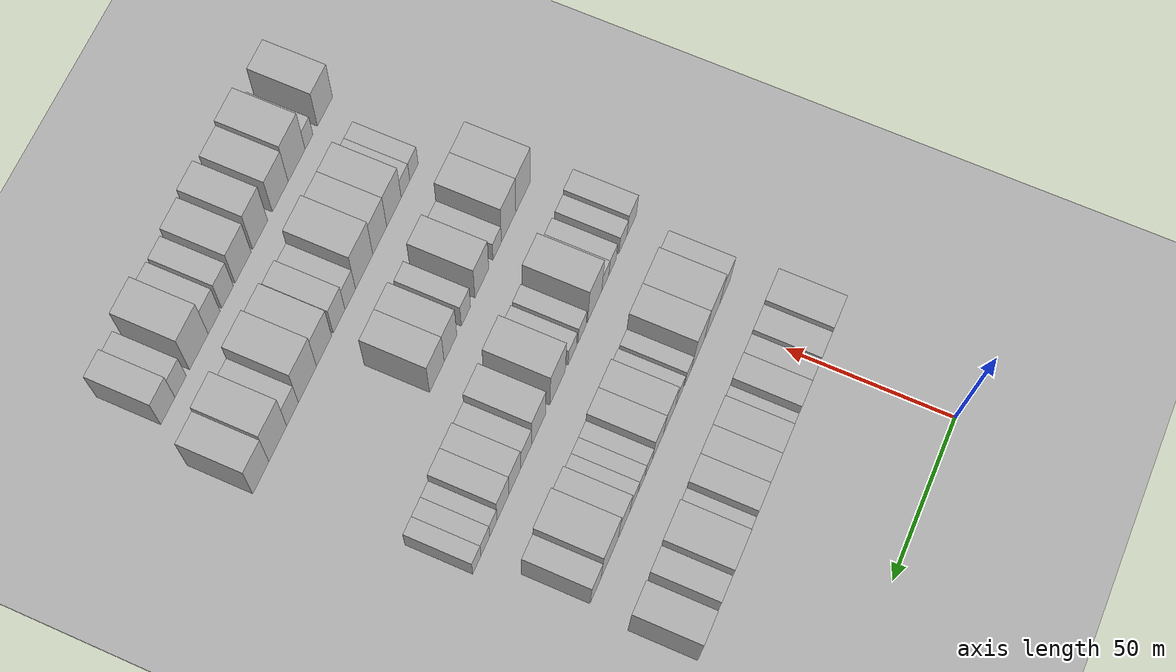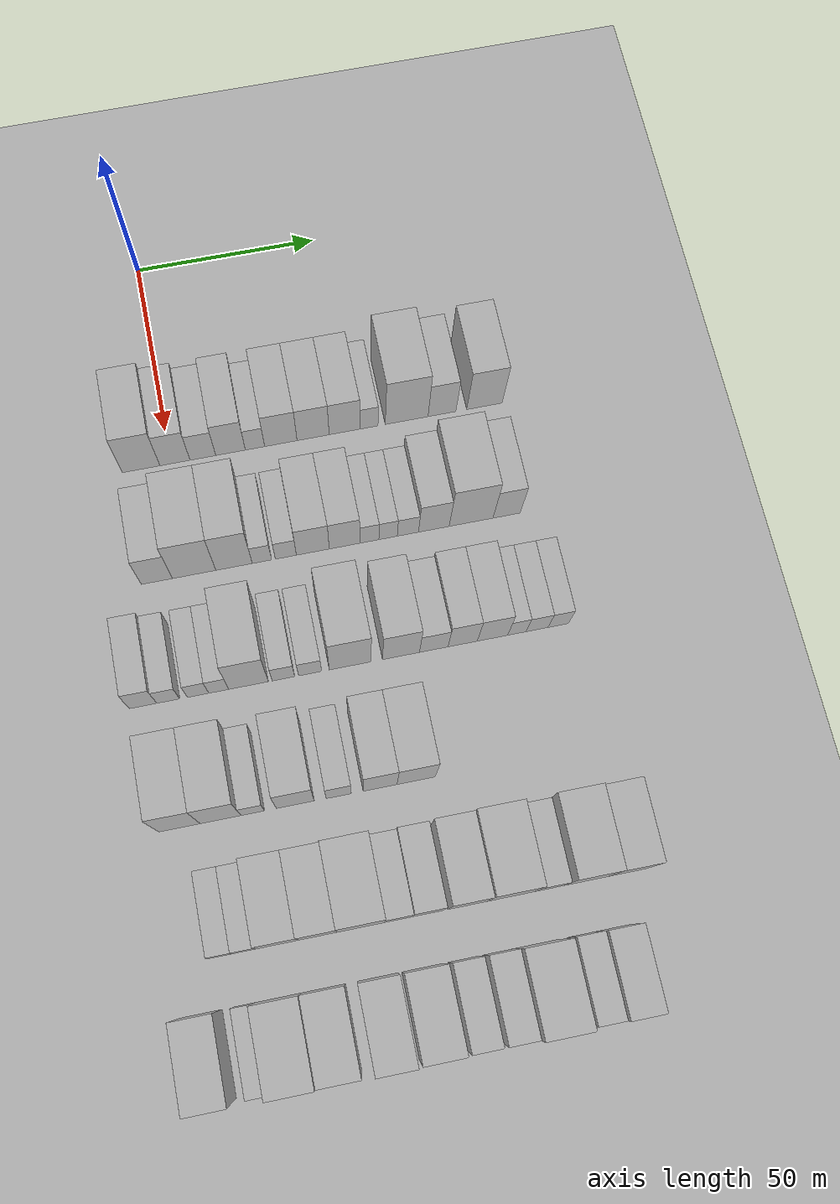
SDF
<sdf version="1.6">
 <world name="default">
  <include><name>ground_plane_1</name><uri>model://HANNAS_ground_plane</uri></include>
  <include>
   <name>ground_plane_2</name>
   <uri>model://HANNAS_ground_plane</uri>
   <pose>100 0 0  0 0 0</pose>
  </include>
  <model name="building_60">
   <static>1</static>
   <pose>50.0000 -7.9346 0 0.000000 0.000000 0.000000</pose>
   <link name="link">
    <pose>0 0 10.50 0 0 0</pose>
    <collision name="collision"><geometry><box><size>20.0000 10.1621 21.0000</size></box></geometry></collision>
    <visual name="visual">
     <cast_shadows>0</cast_shadows>
     <geometry><box><size>20.0000 10.1621 21.0000</size></box></geometry>
     <material>
      <script>
       <uri>model://HANNAS_wall/materials/scripts</uri>
       <uri>model://HANNAS_wall/materials/textures</uri>
       <name>vrc/HANNAS_wall</name>
      </script>
     </material>
    </visual>
   </link>
  </model>
  <model name="building_61">
   <static>1</static>
   <pose>50.0000 1.2176 0 0.000000 0.000000 0.000000</pose>
   <link name="link">
    <pose>0 0 9.00 0 0 0</pose>
    <collision name="collision"><geometry><box><size>20.0000 8.1424 18.0000</size></box></geometry></collision>
    <visual name="visual">
     <cast_shadows>0</cast_shadows>
     <geometry><box><size>20.0000 8.1424 18.0000</size></box></geometry>
     <material>
      <script>
       <uri>model://HANNAS_wall/materials/scripts</uri>
       <uri>model://HANNAS_wall/materials/textures</uri>
       <name>vrc/HANNAS_wall</name>
      </script>
     </material>
    </visual>
   </link>
  </model>
  <model name="building_62">
   <static>1</static>
   <pose>50.0000 8.7881 0 0.000000 0.000000 0.000000</pose>
   <link name="link">
    <pose>0 0 7.50 0 0 0</pose>
    <collision name="collision"><geometry><box><size>20.0000 6.9986 15.0000</size></box></geometry></collision>
    <visual name="visual">
     <cast_shadows>0</cast_shadows>
     <geometry><box><size>20.0000 6.9986 15.0000</size></box></geometry>
     <material>
      <script>
       <uri>model://HANNAS_wall/materials/scripts</uri>
       <uri>model://HANNAS_wall/materials/textures</uri>
       <name>vrc/HANNAS_wall</name>
      </script>
     </material>
    </visual>
   </link>
  </model>
  <model name="building_63">
   <static>1</static>
   <pose>50.0000 16.3188 0 0.000000 0.000000 0.000000</pose>
   <link name="link">
    <pose>0 0 9.00 0 0 0</pose>
    <collision name="collision"><geometry><box><size>20.0000 8.0629 18.0000</size></box></geometry></collision>
    <visual name="visual">
     <cast_shadows>0</cast_shadows>
     <geometry><box><size>20.0000 8.0629 18.0000</size></box></geometry>
     <material>
      <script>
       <uri>model://HANNAS_wall/materials/scripts</uri>
       <uri>model://HANNAS_wall/materials/textures</uri>
       <name>vrc/HANNAS_wall</name>
      </script>
     </material>
    </visual>
   </link>
  </model>
  <model name="building_64">
   <static>1</static>
   <pose>50.0000 22.9707 0 0.000000 0.000000 0.000000</pose>
   <link name="link">
    <pose>0 0 6.00 0 0 0</pose>
    <collision name="collision"><geometry><box><size>20.0000 5.2408 12.0000</size></box></geometry></collision>
    <visual name="visual">
     <cast_shadows>0</cast_shadows>
     <geometry><box><size>20.0000 5.2408 12.0000</size></box></geometry>
     <material>
      <script>
       <uri>model://HANNAS_wall/materials/scripts</uri>
       <uri>model://HANNAS_wall/materials/textures</uri>
       <name>vrc/HANNAS_wall</name>
      </script>
     </material>
    </visual>
   </link>
  </model>
  <model name="building_65">
   <static>1</static>
   <pose>50.0000 30.0249 0 0.000000 0.000000 0.000000</pose>
   <link name="link">
    <pose>0 0 9.00 0 0 0</pose>
    <collision name="collision"><geometry><box><size>20.0000 8.8676 18.0000</size></box></geometry></collision>
    <visual name="visual">
     <cast_shadows>0</cast_shadows>
     <geometry><box><size>20.0000 8.8676 18.0000</size></box></geometry>
     <material>
      <script>
       <uri>model://HANNAS_wall/materials/scripts</uri>
       <uri>model://HANNAS_wall/materials/textures</uri>
       <name>vrc/HANNAS_wall</name>
      </script>
     </material>
    </visual>
   </link>
  </model>
  <model name="building_66">
   <static>1</static>
   <pose>50.0000 38.8624 0 0.000000 0.000000 0.000000</pose>
   <link name="link">
    <pose>0 0 9.00 0 0 0</pose>
    <collision name="collision"><geometry><box><size>20.0000 8.8074 18.0000</size></box></geometry></collision>
    <visual name="visual">
     <cast_shadows>0</cast_shadows>
     <geometry><box><size>20.0000 8.8074 18.0000</size></box></geometry>
     <material>
      <script>
       <uri>model://HANNAS_wall/materials/scripts</uri>
       <uri>model://HANNAS_wall/materials/textures</uri>
       <name>vrc/HANNAS_wall</name>
      </script>
     </material>
    </visual>
   </link>
  </model>
  <model name="building_67">
   <static>1</static>
   <pose>50.0000 47.5125 0 0.000000 0.000000 0.000000</pose>
   <link name="link">
    <pose>0 0 9.00 0 0 0</pose>
    <collision name="collision"><geometry><box><size>20.0000 8.4929 18.0000</size></box></geometry></collision>
    <visual name="visual">
     <cast_shadows>0</cast_shadows>
     <geometry><box><size>20.0000 8.4929 18.0000</size></box></geometry>
     <material>
      <script>
       <uri>model://HANNAS_wall/materials/scripts</uri>
       <uri>model://HANNAS_wall/materials/textures</uri>
       <name>vrc/HANNAS_wall</name>
      </script>
     </material>
    </visual>
   </link>
  </model>
  <model name="building_68">
   <static>1</static>
   <pose>50.0000 54.2405 0 0.000000 0.000000 0.000000</pose>
   <link name="link">
    <pose>0 0 6.00 0 0 0</pose>
    <collision name="collision"><geometry><box><size>20.0000 4.9630 12.0000</size></box></geometry></collision>
    <visual name="visual">
     <cast_shadows>0</cast_shadows>
     <geometry><box><size>20.0000 4.9630 12.0000</size></box></geometry>
     <material>
      <script>
       <uri>model://HANNAS_wall/materials/scripts</uri>
       <uri>model://HANNAS_wall/materials/textures</uri>
       <name>vrc/HANNAS_wall</name>
      </script>
     </material>
    </visual>
   </link>
  </model>
  <model name="building_69">
   <static>1</static>
   <pose>50.0000 64.6380 0 0.000000 0.000000 0.000000</pose>
   <link name="link">
    <pose>0 0 12.00 0 0 0</pose>
    <collision name="collision"><geometry><box><size>20.0000 11.8322 24.0000</size></box></geometry></collision>
    <visual name="visual">
     <cast_shadows>0</cast_shadows>
     <geometry><box><size>20.0000 11.8322 24.0000</size></box></geometry>
     <material>
      <script>
       <uri>model://HANNAS_wall/materials/scripts</uri>
       <uri>model://HANNAS_wall/materials/textures</uri>
       <name>vrc/HANNAS_wall</name>
      </script>
     </material>
    </visual>
   </link>
  </model>
  <model name="building_70">
   <static>1</static>
   <pose>50.0000 74.4297 0 0.000000 0.000000 0.000000</pose>
   <link name="link">
    <pose>0 0 9.00 0 0 0</pose>
    <collision name="collision"><geometry><box><size>20.0000 7.7511 18.0000</size></box></geometry></collision>
    <visual name="visual">
     <cast_shadows>0</cast_shadows>
     <geometry><box><size>20.0000 7.7511 18.0000</size></box></geometry>
     <material>
      <script>
       <uri>model://HANNAS_wall/materials/scripts</uri>
       <uri>model://HANNAS_wall/materials/textures</uri>
       <name>vrc/HANNAS_wall</name>
      </script>
     </material>
    </visual>
   </link>
  </model>
  <model name="building_71">
   <static>1</static>
   <pose>50.0000 86.2482 0 0.000000 0.000000 0.000000</pose>
   <link name="link">
    <pose>0 0 10.50 0 0 0</pose>
    <collision name="collision"><geometry><box><size>20.0000 9.8860 21.0000</size></box></geometry></collision>
    <visual name="visual">
     <cast_shadows>0</cast_shadows>
     <geometry><box><size>20.0000 9.8860 21.0000</size></box></geometry>
     <material>
      <script>
       <uri>model://HANNAS_wall/materials/scripts</uri>
       <uri>model://HANNAS_wall/materials/textures</uri>
       <name>vrc/HANNAS_wall</name>
      </script>
     </material>
    </visual>
   </link>
  </model>
  <model name="building_179">
   <static>1</static>
   <pose>82.0000 -8.5100 0 0.000000 0.000000 0.000000</pose>
   <link name="link">
    <pose>0 0 9.00 0 0 0</pose>
    <collision name="collision"><geometry><box><size>20.0000 8.1752 18.0000</size></box></geometry></collision>
    <visual name="visual">
     <cast_shadows>0</cast_shadows>
     <geometry><box><size>20.0000 8.1752 18.0000</size></box></geometry>
     <material>
      <script>
       <uri>model://HANNAS_wall/materials/scripts</uri>
       <uri>model://HANNAS_wall/materials/textures</uri>
       <name>vrc/HANNAS_wall</name>
      </script>
     </material>
    </visual>
   </link>
  </model>
  <model name="building_180">
   <static>1</static>
   <pose>82.0000 1.3120 0 0.000000 0.000000 0.000000</pose>
   <link name="link">
    <pose>0 0 12.00 0 0 0</pose>
    <collision name="collision"><geometry><box><size>20.0000 11.4689 24.0000</size></box></geometry></collision>
    <visual name="visual">
     <cast_shadows>0</cast_shadows>
     <geometry><box><size>20.0000 11.4689 24.0000</size></box></geometry>
     <material>
      <script>
       <uri>model://HANNAS_wall/materials/scripts</uri>
       <uri>model://HANNAS_wall/materials/textures</uri>
       <name>vrc/HANNAS_wall</name>
      </script>
     </material>
    </visual>
   </link>
  </model>
  <model name="building_181">
   <static>1</static>
   <pose>82.0000 11.8715 0 0.000000 0.000000 0.000000</pose>
   <link name="link">
    <pose>0 0 12.00 0 0 0</pose>
    <collision name="collision"><geometry><box><size>20.0000 9.6501 24.0000</size></box></geometry></collision>
    <visual name="visual">
     <cast_shadows>0</cast_shadows>
     <geometry><box><size>20.0000 9.6501 24.0000</size></box></geometry>
     <material>
      <script>
       <uri>model://HANNAS_wall/materials/scripts</uri>
       <uri>model://HANNAS_wall/materials/textures</uri>
       <name>vrc/HANNAS_wall</name>
      </script>
     </material>
    </visual>
   </link>
  </model>
  <model name="building_182">
   <static>1</static>
   <pose>82.0000 19.2648 0 0.000000 0.000000 0.000000</pose>
   <link name="link">
    <pose>0 0 6.00 0 0 0</pose>
    <collision name="collision"><geometry><box><size>20.0000 5.1367 12.0000</size></box></geometry></collision>
    <visual name="visual">
     <cast_shadows>0</cast_shadows>
     <geometry><box><size>20.0000 5.1367 12.0000</size></box></geometry>
     <material>
      <script>
       <uri>model://HANNAS_wall/materials/scripts</uri>
       <uri>model://HANNAS_wall/materials/textures</uri>
       <name>vrc/HANNAS_wall</name>
      </script>
     </material>
    </visual>
   </link>
  </model>
  <model name="building_183">
   <static>1</static>
   <pose>82.0000 25.6323 0 0.000000 0.000000 0.000000</pose>
   <link name="link">
    <pose>0 0 6.00 0 0 0</pose>
    <collision name="collision"><geometry><box><size>20.0000 5.5982 12.0000</size></box></geometry></collision>
    <visual name="visual">
     <cast_shadows>0</cast_shadows>
     <geometry><box><size>20.0000 5.5982 12.0000</size></box></geometry>
     <material>
      <script>
       <uri>model://HANNAS_wall/materials/scripts</uri>
       <uri>model://HANNAS_wall/materials/textures</uri>
       <name>vrc/HANNAS_wall</name>
      </script>
     </material>
    </visual>
   </link>
  </model>
  <model name="building_184">
   <static>1</static>
   <pose>82.0000 32.8132 0 0.000000 0.000000 0.000000</pose>
   <link name="link">
    <pose>0 0 9.00 0 0 0</pose>
    <collision name="collision"><geometry><box><size>20.0000 8.7637 18.0000</size></box></geometry></collision>
    <visual name="visual">
     <cast_shadows>0</cast_shadows>
     <geometry><box><size>20.0000 8.7637 18.0000</size></box></geometry>
     <material>
      <script>
       <uri>model://HANNAS_wall/materials/scripts</uri>
       <uri>model://HANNAS_wall/materials/textures</uri>
       <name>vrc/HANNAS_wall</name>
      </script>
     </material>
    </visual>
   </link>
  </model>
  <model name="building_185">
   <static>1</static>
   <pose>82.0000 41.2877 0 0.000000 0.000000 0.000000</pose>
   <link name="link">
    <pose>0 0 9.00 0 0 0</pose>
    <collision name="collision"><geometry><box><size>20.0000 8.1854 18.0000</size></box></geometry></collision>
    <visual name="visual">
     <cast_shadows>0</cast_shadows>
     <geometry><box><size>20.0000 8.1854 18.0000</size></box></geometry>
     <material>
      <script>
       <uri>model://HANNAS_wall/materials/scripts</uri>
       <uri>model://HANNAS_wall/materials/textures</uri>
       <name>vrc/HANNAS_wall</name>
      </script>
     </material>
    </visual>
   </link>
  </model>
  <model name="building_186">
   <static>1</static>
   <pose>82.0000 47.9301 0 0.000000 0.000000 0.000000</pose>
   <link name="link">
    <pose>0 0 6.00 0 0 0</pose>
    <collision name="collision"><geometry><box><size>20.0000 5.0992 12.0000</size></box></geometry></collision>
    <visual name="visual">
     <cast_shadows>0</cast_shadows>
     <geometry><box><size>20.0000 5.0992 12.0000</size></box></geometry>
     <material>
      <script>
       <uri>model://HANNAS_wall/materials/scripts</uri>
       <uri>model://HANNAS_wall/materials/textures</uri>
       <name>vrc/HANNAS_wall</name>
      </script>
     </material>
    </visual>
   </link>
  </model>
  <model name="building_187">
   <static>1</static>
   <pose>82.0000 52.9545 0 0.000000 0.000000 0.000000</pose>
   <link name="link">
    <pose>0 0 6.00 0 0 0</pose>
    <collision name="collision"><geometry><box><size>20.0000 4.9496 12.0000</size></box></geometry></collision>
    <visual name="visual">
     <cast_shadows>0</cast_shadows>
     <geometry><box><size>20.0000 4.9496 12.0000</size></box></geometry>
     <material>
      <script>
       <uri>model://HANNAS_wall/materials/scripts</uri>
       <uri>model://HANNAS_wall/materials/textures</uri>
       <name>vrc/HANNAS_wall</name>
      </script>
     </material>
    </visual>
   </link>
  </model>
  <model name="building_188">
   <static>1</static>
   <pose>82.0000 58.2823 0 0.000000 0.000000 0.000000</pose>
   <link name="link">
    <pose>0 0 6.00 0 0 0</pose>
    <collision name="collision"><geometry><box><size>20.0000 5.7061 12.0000</size></box></geometry></collision>
    <visual name="visual">
     <cast_shadows>0</cast_shadows>
     <geometry><box><size>20.0000 5.7061 12.0000</size></box></geometry>
     <material>
      <script>
       <uri>model://HANNAS_wall/materials/scripts</uri>
       <uri>model://HANNAS_wall/materials/textures</uri>
       <name>vrc/HANNAS_wall</name>
      </script>
     </material>
    </visual>
   </link>
  </model>
  <model name="building_189">
   <static>1</static>
   <pose>82.0000 65.2683 0 0.000000 0.000000 0.000000</pose>
   <link name="link">
    <pose>0 0 9.00 0 0 0</pose>
    <collision name="collision"><geometry><box><size>20.0000 8.2660 18.0000</size></box></geometry></collision>
    <visual name="visual">
     <cast_shadows>0</cast_shadows>
     <geometry><box><size>20.0000 8.2660 18.0000</size></box></geometry>
     <material>
      <script>
       <uri>model://HANNAS_wall/materials/scripts</uri>
       <uri>model://HANNAS_wall/materials/textures</uri>
       <name>vrc/HANNAS_wall</name>
      </script>
     </material>
    </visual>
   </link>
  </model>
  <model name="building_190">
   <static>1</static>
   <pose>82.0000 75.3390 0 0.000000 0.000000 0.000000</pose>
   <link name="link">
    <pose>0 0 12.00 0 0 0</pose>
    <collision name="collision"><geometry><box><size>20.0000 11.8753 24.0000</size></box></geometry></collision>
    <visual name="visual">
     <cast_shadows>0</cast_shadows>
     <geometry><box><size>20.0000 11.8753 24.0000</size></box></geometry>
     <material>
      <script>
       <uri>model://HANNAS_wall/materials/scripts</uri>
       <uri>model://HANNAS_wall/materials/textures</uri>
       <name>vrc/HANNAS_wall</name>
      </script>
     </material>
    </visual>
   </link>
  </model>
  <model name="building_191">
   <static>1</static>
   <pose>82.0000 84.9614 0 0.000000 0.000000 0.000000</pose>
   <link name="link">
    <pose>0 0 9.00 0 0 0</pose>
    <collision name="collision"><geometry><box><size>20.0000 7.3695 18.0000</size></box></geometry></collision>
    <visual name="visual">
     <cast_shadows>0</cast_shadows>
     <geometry><box><size>20.0000 7.3695 18.0000</size></box></geometry>
     <material>
      <script>
       <uri>model://HANNAS_wall/materials/scripts</uri>
       <uri>model://HANNAS_wall/materials/textures</uri>
       <name>vrc/HANNAS_wall</name>
      </script>
     </material>
    </visual>
   </link>
  </model>
  <model name="building_302">
   <static>1</static>
   <pose>114.0000 -16.8240 0 0.000000 0.000000 0.000000</pose>
   <link name="link">
    <pose>0 0 7.50 0 0 0</pose>
    <collision name="collision"><geometry><box><size>20.0000 6.9656 15.0000</size></box></geometry></collision>
    <visual name="visual">
     <cast_shadows>0</cast_shadows>
     <geometry><box><size>20.0000 6.9656 15.0000</size></box></geometry>
     <material>
      <script>
       <uri>model://HANNAS_wall/materials/scripts</uri>
       <uri>model://HANNAS_wall/materials/textures</uri>
       <name>vrc/HANNAS_wall</name>
      </script>
     </material>
    </visual>
   </link>
  </model>
  <model name="building_303">
   <static>1</static>
   <pose>114.0000 -10.4124 0 0.000000 0.000000 0.000000</pose>
   <link name="link">
    <pose>0 0 6.00 0 0 0</pose>
    <collision name="collision"><geometry><box><size>20.0000 5.8577 12.0000</size></box></geometry></collision>
    <visual name="visual">
     <cast_shadows>0</cast_shadows>
     <geometry><box><size>20.0000 5.8577 12.0000</size></box></geometry>
     <material>
      <script>
       <uri>model://HANNAS_wall/materials/scripts</uri>
       <uri>model://HANNAS_wall/materials/textures</uri>
       <name>vrc/HANNAS_wall</name>
      </script>
     </material>
    </visual>
   </link>
  </model>
  <model name="building_304">
   <static>1</static>
   <pose>114.0000 -2.7635 0 0.000000 0.000000 0.000000</pose>
   <link name="link">
    <pose>0 0 6.00 0 0 0</pose>
    <collision name="collision"><geometry><box><size>20.0000 5.4400 12.0000</size></box></geometry></collision>
    <visual name="visual">
     <cast_shadows>0</cast_shadows>
     <geometry><box><size>20.0000 5.4400 12.0000</size></box></geometry>
     <material>
      <script>
       <uri>model://HANNAS_wall/materials/scripts</uri>
       <uri>model://HANNAS_wall/materials/textures</uri>
       <name>vrc/HANNAS_wall</name>
      </script>
     </material>
    </visual>
   </link>
  </model>
  <model name="building_305">
   <static>1</static>
   <pose>114.0000 2.5165 0 0.000000 0.000000 0.000000</pose>
   <link name="link">
    <pose>0 0 6.00 0 0 0</pose>
    <collision name="collision"><geometry><box><size>20.0000 5.1201 12.0000</size></box></geometry></collision>
    <visual name="visual">
     <cast_shadows>0</cast_shadows>
     <geometry><box><size>20.0000 5.1201 12.0000</size></box></geometry>
     <material>
      <script>
       <uri>model://HANNAS_wall/materials/scripts</uri>
       <uri>model://HANNAS_wall/materials/textures</uri>
       <name>vrc/HANNAS_wall</name>
      </script>
     </material>
    </visual>
   </link>
  </model>
  <model name="building_306">
   <static>1</static>
   <pose>114.0000 10.1935 0 0.000000 0.000000 0.000000</pose>
   <link name="link">
    <pose>0 0 12.00 0 0 0</pose>
    <collision name="collision"><geometry><box><size>20.0000 10.2338 24.0000</size></box></geometry></collision>
    <visual name="visual">
     <cast_shadows>0</cast_shadows>
     <geometry><box><size>20.0000 10.2338 24.0000</size></box></geometry>
     <material>
      <script>
       <uri>model://HANNAS_wall/materials/scripts</uri>
       <uri>model://HANNAS_wall/materials/textures</uri>
       <name>vrc/HANNAS_wall</name>
      </script>
     </material>
    </visual>
   </link>
  </model>
  <model name="building_307">
   <static>1</static>
   <pose>114.0000 19.2189 0 0.000000 0.000000 0.000000</pose>
   <link name="link">
    <pose>0 0 6.00 0 0 0</pose>
    <collision name="collision"><geometry><box><size>20.0000 5.8170 12.0000</size></box></geometry></collision>
    <visual name="visual">
     <cast_shadows>0</cast_shadows>
     <geometry><box><size>20.0000 5.8170 12.0000</size></box></geometry>
     <material>
      <script>
       <uri>model://HANNAS_wall/materials/scripts</uri>
       <uri>model://HANNAS_wall/materials/textures</uri>
       <name>vrc/HANNAS_wall</name>
      </script>
     </material>
    </visual>
   </link>
  </model>
  <model name="building_308">
   <static>1</static>
   <pose>114.0000 26.1151 0 0.000000 0.000000 0.000000</pose>
   <link name="link">
    <pose>0 0 6.00 0 0 0</pose>
    <collision name="collision"><geometry><box><size>20.0000 5.9753 12.0000</size></box></geometry></collision>
    <visual name="visual">
     <cast_shadows>0</cast_shadows>
     <geometry><box><size>20.0000 5.9753 12.0000</size></box></geometry>
     <material>
      <script>
       <uri>model://HANNAS_wall/materials/scripts</uri>
       <uri>model://HANNAS_wall/materials/textures</uri>
       <name>vrc/HANNAS_wall</name>
      </script>
     </material>
    </visual>
   </link>
  </model>
  <model name="building_309">
   <static>1</static>
   <pose>114.0000 36.5189 0 0.000000 0.000000 0.000000</pose>
   <link name="link">
    <pose>0 0 12.00 0 0 0</pose>
    <collision name="collision"><geometry><box><size>20.0000 10.8323 24.0000</size></box></geometry></collision>
    <visual name="visual">
     <cast_shadows>0</cast_shadows>
     <geometry><box><size>20.0000 10.8323 24.0000</size></box></geometry>
     <material>
      <script>
       <uri>model://HANNAS_wall/materials/scripts</uri>
       <uri>model://HANNAS_wall/materials/textures</uri>
       <name>vrc/HANNAS_wall</name>
      </script>
     </material>
    </visual>
   </link>
  </model>
  <model name="building_310">
   <static>1</static>
   <pose>114.0000 49.7742 0 0.000000 0.000000 0.000000</pose>
   <link name="link">
    <pose>0 0 10.50 0 0 0</pose>
    <collision name="collision"><geometry><box><size>20.0000 9.6784 21.0000</size></box></geometry></collision>
    <visual name="visual">
     <cast_shadows>0</cast_shadows>
     <geometry><box><size>20.0000 9.6784 21.0000</size></box></geometry>
     <material>
      <script>
       <uri>model://HANNAS_wall/materials/scripts</uri>
       <uri>model://HANNAS_wall/materials/textures</uri>
       <name>vrc/HANNAS_wall</name>
      </script>
     </material>
    </visual>
   </link>
  </model>
  <model name="building_311">
   <static>1</static>
   <pose>114.0000 58.3414 0 0.000000 0.000000 0.000000</pose>
   <link name="link">
    <pose>0 0 7.50 0 0 0</pose>
    <collision name="collision"><geometry><box><size>20.0000 7.4559 15.0000</size></box></geometry></collision>
    <visual name="visual">
     <cast_shadows>0</cast_shadows>
     <geometry><box><size>20.0000 7.4559 15.0000</size></box></geometry>
     <material>
      <script>
       <uri>model://HANNAS_wall/materials/scripts</uri>
       <uri>model://HANNAS_wall/materials/textures</uri>
       <name>vrc/HANNAS_wall</name>
      </script>
     </material>
    </visual>
   </link>
  </model>
  <model name="building_312">
   <static>1</static>
   <pose>114.0000 65.9230 0 0.000000 0.000000 0.000000</pose>
   <link name="link">
    <pose>0 0 9.00 0 0 0</pose>
    <collision name="collision"><geometry><box><size>20.0000 7.7073 18.0000</size></box></geometry></collision>
    <visual name="visual">
     <cast_shadows>0</cast_shadows>
     <geometry><box><size>20.0000 7.7073 18.0000</size></box></geometry>
     <material>
      <script>
       <uri>model://HANNAS_wall/materials/scripts</uri>
       <uri>model://HANNAS_wall/materials/textures</uri>
       <name>vrc/HANNAS_wall</name>
      </script>
     </material>
    </visual>
   </link>
  </model>
  <model name="building_313">
   <static>1</static>
   <pose>114.0000 73.7893 0 0.000000 0.000000 0.000000</pose>
   <link name="link">
    <pose>0 0 9.00 0 0 0</pose>
    <collision name="collision"><geometry><box><size>20.0000 8.0253 18.0000</size></box></geometry></collision>
    <visual name="visual">
     <cast_shadows>0</cast_shadows>
     <geometry><box><size>20.0000 8.0253 18.0000</size></box></geometry>
     <material>
      <script>
       <uri>model://HANNAS_wall/materials/scripts</uri>
       <uri>model://HANNAS_wall/materials/textures</uri>
       <name>vrc/HANNAS_wall</name>
      </script>
     </material>
    </visual>
   </link>
  </model>
  <model name="building_314">
   <static>1</static>
   <pose>114.0000 80.2514 0 0.000000 0.000000 0.000000</pose>
   <link name="link">
    <pose>0 0 6.00 0 0 0</pose>
    <collision name="collision"><geometry><box><size>20.0000 4.8990 12.0000</size></box></geometry></collision>
    <visual name="visual">
     <cast_shadows>0</cast_shadows>
     <geometry><box><size>20.0000 4.8990 12.0000</size></box></geometry>
     <material>
      <script>
       <uri>model://HANNAS_wall/materials/scripts</uri>
       <uri>model://HANNAS_wall/materials/textures</uri>
       <name>vrc/HANNAS_wall</name>
      </script>
     </material>
    </visual>
   </link>
  </model>
  <model name="building_315">
   <static>1</static>
   <pose>114.0000 85.5887 0 0.000000 0.000000 0.000000</pose>
   <link name="link">
    <pose>0 0 6.00 0 0 0</pose>
    <collision name="collision"><geometry><box><size>20.0000 5.7754 12.0000</size></box></geometry></collision>
    <visual name="visual">
     <cast_shadows>0</cast_shadows>
     <geometry><box><size>20.0000 5.7754 12.0000</size></box></geometry>
     <material>
      <script>
       <uri>model://HANNAS_wall/materials/scripts</uri>
       <uri>model://HANNAS_wall/materials/textures</uri>
       <name>vrc/HANNAS_wall</name>
      </script>
     </material>
    </visual>
   </link>
  </model>
  <model name="building_316">
   <static>1</static>
   <pose>114.0000 91.1771 0 0.000000 0.000000 0.000000</pose>
   <link name="link">
    <pose>0 0 6.00 0 0 0</pose>
    <collision name="collision"><geometry><box><size>20.0000 5.4014 12.0000</size></box></geometry></collision>
    <visual name="visual">
     <cast_shadows>0</cast_shadows>
     <geometry><box><size>20.0000 5.4014 12.0000</size></box></geometry>
     <material>
      <script>
       <uri>model://HANNAS_wall/materials/scripts</uri>
       <uri>model://HANNAS_wall/materials/textures</uri>
       <name>vrc/HANNAS_wall</name>
      </script>
     </material>
    </visual>
   </link>
  </model>
  <model name="building_413">
   <static>1</static>
   <pose>146.0000 -12.4923 0 0.000000 0.000000 0.000000</pose>
   <link name="link">
    <pose>0 0 12.00 0 0 0</pose>
    <collision name="collision"><geometry><box><size>20.0000 10.2843 24.0000</size></box></geometry></collision>
    <visual name="visual">
     <cast_shadows>0</cast_shadows>
     <geometry><box><size>20.0000 10.2843 24.0000</size></box></geometry>
     <material>
      <script>
       <uri>model://HANNAS_wall/materials/scripts</uri>
       <uri>model://HANNAS_wall/materials/textures</uri>
       <name>vrc/HANNAS_wall</name>
      </script>
     </material>
    </visual>
   </link>
  </model>
  <model name="building_414">
   <static>1</static>
   <pose>146.0000 -2.2470 0 0.000000 0.000000 0.000000</pose>
   <link name="link">
    <pose>0 0 12.00 0 0 0</pose>
    <collision name="collision"><geometry><box><size>20.0000 10.2064 24.0000</size></box></geometry></collision>
    <visual name="visual">
     <cast_shadows>0</cast_shadows>
     <geometry><box><size>20.0000 10.2064 24.0000</size></box></geometry>
     <material>
      <script>
       <uri>model://HANNAS_wall/materials/scripts</uri>
       <uri>model://HANNAS_wall/materials/textures</uri>
       <name>vrc/HANNAS_wall</name>
      </script>
     </material>
    </visual>
   </link>
  </model>
  <model name="building_415">
   <static>1</static>
   <pose>146.0000 5.7773 0 0.000000 0.000000 0.000000</pose>
   <link name="link">
    <pose>0 0 6.00 0 0 0</pose>
    <collision name="collision"><geometry><box><size>20.0000 5.8421 12.0000</size></box></geometry></collision>
    <visual name="visual">
     <cast_shadows>0</cast_shadows>
     <geometry><box><size>20.0000 5.8421 12.0000</size></box></geometry>
     <material>
      <script>
       <uri>model://HANNAS_wall/materials/scripts</uri>
       <uri>model://HANNAS_wall/materials/textures</uri>
       <name>vrc/HANNAS_wall</name>
      </script>
     </material>
    </visual>
   </link>
  </model>
  <model name="building_416">
   <static>1</static>
   <pose>146.0000 16.4605 0 0.000000 0.000000 0.000000</pose>
   <link name="link">
    <pose>0 0 10.50 0 0 0</pose>
    <collision name="collision"><geometry><box><size>20.0000 9.5244 21.0000</size></box></geometry></collision>
    <visual name="visual">
     <cast_shadows>0</cast_shadows>
     <geometry><box><size>20.0000 9.5244 21.0000</size></box></geometry>
     <material>
      <script>
       <uri>model://HANNAS_wall/materials/scripts</uri>
       <uri>model://HANNAS_wall/materials/textures</uri>
       <name>vrc/HANNAS_wall</name>
      </script>
     </material>
    </visual>
   </link>
  </model>
  <model name="building_417">
   <static>1</static>
   <pose>146.0000 27.3804 0 0.000000 0.000000 0.000000</pose>
   <link name="link">
    <pose>0 0 7.50 0 0 0</pose>
    <collision name="collision"><geometry><box><size>20.0000 6.3154 15.0000</size></box></geometry></collision>
    <visual name="visual">
     <cast_shadows>0</cast_shadows>
     <geometry><box><size>20.0000 6.3154 15.0000</size></box></geometry>
     <material>
      <script>
       <uri>model://HANNAS_wall/materials/scripts</uri>
       <uri>model://HANNAS_wall/materials/textures</uri>
       <name>vrc/HANNAS_wall</name>
      </script>
     </material>
    </visual>
   </link>
  </model>
  <model name="building_418">
   <static>1</static>
   <pose>146.0000 37.8271 0 0.000000 0.000000 0.000000</pose>
   <link name="link">
    <pose>0 0 10.50 0 0 0</pose>
    <collision name="collision"><geometry><box><size>20.0000 8.5779 21.0000</size></box></geometry></collision>
    <visual name="visual">
     <cast_shadows>0</cast_shadows>
     <geometry><box><size>20.0000 8.5779 21.0000</size></box></geometry>
     <material>
      <script>
       <uri>model://HANNAS_wall/materials/scripts</uri>
       <uri>model://HANNAS_wall/materials/textures</uri>
       <name>vrc/HANNAS_wall</name>
      </script>
     </material>
    </visual>
   </link>
  </model>
  <model name="building_419">
   <static>1</static>
   <pose>146.0000 46.9918 0 0.000000 0.000000 0.000000</pose>
   <link name="link">
    <pose>0 0 10.50 0 0 0</pose>
    <collision name="collision"><geometry><box><size>20.0000 9.7515 21.0000</size></box></geometry></collision>
    <visual name="visual">
     <cast_shadows>0</cast_shadows>
     <geometry><box><size>20.0000 9.7515 21.0000</size></box></geometry>
     <material>
      <script>
       <uri>model://HANNAS_wall/materials/scripts</uri>
       <uri>model://HANNAS_wall/materials/textures</uri>
       <name>vrc/HANNAS_wall</name>
      </script>
     </material>
    </visual>
   </link>
  </model>
  <model name="building_530">
   <static>1</static>
   <pose>178.0000 -7.0886 0 0.000000 0.000000 0.000000</pose>
   <link name="link">
    <pose>0 0 6.00 0 0 0</pose>
    <collision name="collision"><geometry><box><size>20.0000 5.7295 12.0000</size></box></geometry></collision>
    <visual name="visual">
     <cast_shadows>0</cast_shadows>
     <geometry><box><size>20.0000 5.7295 12.0000</size></box></geometry>
     <material>
      <script>
       <uri>model://HANNAS_wall/materials/scripts</uri>
       <uri>model://HANNAS_wall/materials/textures</uri>
       <name>vrc/HANNAS_wall</name>
      </script>
     </material>
    </visual>
   </link>
  </model>
  <model name="building_531">
   <static>1</static>
   <pose>178.0000 -1.2630 0 0.000000 0.000000 0.000000</pose>
   <link name="link">
    <pose>0 0 6.00 0 0 0</pose>
    <collision name="collision"><geometry><box><size>20.0000 5.9216 12.0000</size></box></geometry></collision>
    <visual name="visual">
     <cast_shadows>0</cast_shadows>
     <geometry><box><size>20.0000 5.9216 12.0000</size></box></geometry>
     <material>
      <script>
       <uri>model://HANNAS_wall/materials/scripts</uri>
       <uri>model://HANNAS_wall/materials/textures</uri>
       <name>vrc/HANNAS_wall</name>
      </script>
     </material>
    </visual>
   </link>
  </model>
  <model name="building_532">
   <static>1</static>
   <pose>178.0000 6.6091 0 0.000000 0.000000 0.000000</pose>
   <link name="link">
    <pose>0 0 10.50 0 0 0</pose>
    <collision name="collision"><geometry><box><size>20.0000 9.8227 21.0000</size></box></geometry></collision>
    <visual name="visual">
     <cast_shadows>0</cast_shadows>
     <geometry><box><size>20.0000 9.8227 21.0000</size></box></geometry>
     <material>
      <script>
       <uri>model://HANNAS_wall/materials/scripts</uri>
       <uri>model://HANNAS_wall/materials/textures</uri>
       <name>vrc/HANNAS_wall</name>
      </script>
     </material>
    </visual>
   </link>
  </model>
  <model name="building_533">
   <static>1</static>
   <pose>178.0000 16.1865 0 0.000000 0.000000 0.000000</pose>
   <link name="link">
    <pose>0 0 10.50 0 0 0</pose>
    <collision name="collision"><geometry><box><size>20.0000 9.3321 21.0000</size></box></geometry></collision>
    <visual name="visual">
     <cast_shadows>0</cast_shadows>
     <geometry><box><size>20.0000 9.3321 21.0000</size></box></geometry>
     <material>
      <script>
       <uri>model://HANNAS_wall/materials/scripts</uri>
       <uri>model://HANNAS_wall/materials/textures</uri>
       <name>vrc/HANNAS_wall</name>
      </script>
     </material>
    </visual>
   </link>
  </model>
  <model name="building_534">
   <static>1</static>
   <pose>178.0000 26.6143 0 0.000000 0.000000 0.000000</pose>
   <link name="link">
    <pose>0 0 12.00 0 0 0</pose>
    <collision name="collision"><geometry><box><size>20.0000 11.5236 24.0000</size></box></geometry></collision>
    <visual name="visual">
     <cast_shadows>0</cast_shadows>
     <geometry><box><size>20.0000 11.5236 24.0000</size></box></geometry>
     <material>
      <script>
       <uri>model://HANNAS_wall/materials/scripts</uri>
       <uri>model://HANNAS_wall/materials/textures</uri>
       <name>vrc/HANNAS_wall</name>
      </script>
     </material>
    </visual>
   </link>
  </model>
  <model name="building_535">
   <static>1</static>
   <pose>178.0000 35.7931 0 0.000000 0.000000 0.000000</pose>
   <link name="link">
    <pose>0 0 7.50 0 0 0</pose>
    <collision name="collision"><geometry><box><size>20.0000 6.8340 15.0000</size></box></geometry></collision>
    <visual name="visual">
     <cast_shadows>0</cast_shadows>
     <geometry><box><size>20.0000 6.8340 15.0000</size></box></geometry>
     <material>
      <script>
       <uri>model://HANNAS_wall/materials/scripts</uri>
       <uri>model://HANNAS_wall/materials/textures</uri>
       <name>vrc/HANNAS_wall</name>
      </script>
     </material>
    </visual>
   </link>
  </model>
  <model name="building_536">
   <static>1</static>
   <pose>178.0000 43.0485 0 0.000000 0.000000 0.000000</pose>
   <link name="link">
    <pose>0 0 9.00 0 0 0</pose>
    <collision name="collision"><geometry><box><size>20.0000 7.6769 18.0000</size></box></geometry></collision>
    <visual name="visual">
     <cast_shadows>0</cast_shadows>
     <geometry><box><size>20.0000 7.6769 18.0000</size></box></geometry>
     <material>
      <script>
       <uri>model://HANNAS_wall/materials/scripts</uri>
       <uri>model://HANNAS_wall/materials/textures</uri>
       <name>vrc/HANNAS_wall</name>
      </script>
     </material>
    </visual>
   </link>
  </model>
  <model name="building_537">
   <static>1</static>
   <pose>178.0000 52.7750 0 0.000000 0.000000 0.000000</pose>
   <link name="link">
    <pose>0 0 10.50 0 0 0</pose>
    <collision name="collision"><geometry><box><size>20.0000 9.7760 21.0000</size></box></geometry></collision>
    <visual name="visual">
     <cast_shadows>0</cast_shadows>
     <geometry><box><size>20.0000 9.7760 21.0000</size></box></geometry>
     <material>
      <script>
       <uri>model://HANNAS_wall/materials/scripts</uri>
       <uri>model://HANNAS_wall/materials/textures</uri>
       <name>vrc/HANNAS_wall</name>
      </script>
     </material>
    </visual>
   </link>
  </model>
  <model name="building_538">
   <static>1</static>
   <pose>178.0000 63.4456 0 0.000000 0.000000 0.000000</pose>
   <link name="link">
    <pose>0 0 12.00 0 0 0</pose>
    <collision name="collision"><geometry><box><size>20.0000 11.5653 24.0000</size></box></geometry></collision>
    <visual name="visual">
     <cast_shadows>0</cast_shadows>
     <geometry><box><size>20.0000 11.5653 24.0000</size></box></geometry>
     <material>
      <script>
       <uri>model://HANNAS_wall/materials/scripts</uri>
       <uri>model://HANNAS_wall/materials/textures</uri>
       <name>vrc/HANNAS_wall</name>
      </script>
     </material>
    </visual>
   </link>
  </model>
  <model name="building_539">
   <static>1</static>
   <pose>178.0000 72.9162 0 0.000000 0.000000 0.000000</pose>
   <link name="link">
    <pose>0 0 7.50 0 0 0</pose>
    <collision name="collision"><geometry><box><size>20.0000 7.3759 15.0000</size></box></geometry></collision>
    <visual name="visual">
     <cast_shadows>0</cast_shadows>
     <geometry><box><size>20.0000 7.3759 15.0000</size></box></geometry>
     <material>
      <script>
       <uri>model://HANNAS_wall/materials/scripts</uri>
       <uri>model://HANNAS_wall/materials/textures</uri>
       <name>vrc/HANNAS_wall</name>
      </script>
     </material>
    </visual>
   </link>
  </model>
  <model name="building_540">
   <static>1</static>
   <pose>178.0000 82.1599 0 0.000000 0.000000 0.000000</pose>
   <link name="link">
    <pose>0 0 12.00 0 0 0</pose>
    <collision name="collision"><geometry><box><size>20.0000 11.1114 24.0000</size></box></geometry></collision>
    <visual name="visual">
     <cast_shadows>0</cast_shadows>
     <geometry><box><size>20.0000 11.1114 24.0000</size></box></geometry>
     <material>
      <script>
       <uri>model://HANNAS_wall/materials/scripts</uri>
       <uri>model://HANNAS_wall/materials/textures</uri>
       <name>vrc/HANNAS_wall</name>
      </script>
     </material>
    </visual>
   </link>
  </model>
  <model name="building_541">
   <static>1</static>
   <pose>178.0000 92.6741 0 0.000000 0.000000 0.000000</pose>
   <link name="link">
    <pose>0 0 10.50 0 0 0</pose>
    <collision name="collision"><geometry><box><size>20.0000 9.9172 21.0000</size></box></geometry></collision>
    <visual name="visual">
     <cast_shadows>0</cast_shadows>
     <geometry><box><size>20.0000 9.9172 21.0000</size></box></geometry>
     <material>
      <script>
       <uri>model://HANNAS_wall/materials/scripts</uri>
       <uri>model://HANNAS_wall/materials/textures</uri>
       <name>vrc/HANNAS_wall</name>
      </script>
     </material>
    </visual>
   </link>
  </model>
  <model name="building_645">
   <static>1</static>
   <pose>210.0000 -14.2825 0 0.000000 0.000000 0.000000</pose>
   <link name="link">
    <pose>0 0 10.50 0 0 0</pose>
    <collision name="collision"><geometry><box><size>20.0000 10.1766 21.0000</size></box></geometry></collision>
    <visual name="visual">
     <cast_shadows>0</cast_shadows>
     <geometry><box><size>20.0000 10.1766 21.0000</size></box></geometry>
     <material>
      <script>
       <uri>model://HANNAS_wall/materials/scripts</uri>
       <uri>model://HANNAS_wall/materials/textures</uri>
       <name>vrc/HANNAS_wall</name>
      </script>
     </material>
    </visual>
   </link>
  </model>
  <model name="building_646">
   <static>1</static>
   <pose>210.0000 -3.5930 0 0.000000 0.000000 0.000000</pose>
   <link name="link">
    <pose>0 0 6.00 0 0 0</pose>
    <collision name="collision"><geometry><box><size>20.0000 5.2025 12.0000</size></box></geometry></collision>
    <visual name="visual">
     <cast_shadows>0</cast_shadows>
     <geometry><box><size>20.0000 5.2025 12.0000</size></box></geometry>
     <material>
      <script>
       <uri>model://HANNAS_wall/materials/scripts</uri>
       <uri>model://HANNAS_wall/materials/textures</uri>
       <name>vrc/HANNAS_wall</name>
      </script>
     </material>
    </visual>
   </link>
  </model>
  <model name="building_647">
   <static>1</static>
   <pose>210.0000 4.6078 0 0.000000 0.000000 0.000000</pose>
   <link name="link">
    <pose>0 0 12.00 0 0 0</pose>
    <collision name="collision"><geometry><box><size>20.0000 11.1993 24.0000</size></box></geometry></collision>
    <visual name="visual">
     <cast_shadows>0</cast_shadows>
     <geometry><box><size>20.0000 11.1993 24.0000</size></box></geometry>
     <material>
      <script>
       <uri>model://HANNAS_wall/materials/scripts</uri>
       <uri>model://HANNAS_wall/materials/textures</uri>
       <name>vrc/HANNAS_wall</name>
      </script>
     </material>
    </visual>
   </link>
  </model>
  <model name="building_648">
   <static>1</static>
   <pose>210.0000 15.3588 0 0.000000 0.000000 0.000000</pose>
   <link name="link">
    <pose>0 0 10.50 0 0 0</pose>
    <collision name="collision"><geometry><box><size>20.0000 10.3027 21.0000</size></box></geometry></collision>
    <visual name="visual">
     <cast_shadows>0</cast_shadows>
     <geometry><box><size>20.0000 10.3027 21.0000</size></box></geometry>
     <material>
      <script>
       <uri>model://HANNAS_wall/materials/scripts</uri>
       <uri>model://HANNAS_wall/materials/textures</uri>
       <name>vrc/HANNAS_wall</name>
      </script>
     </material>
    </visual>
   </link>
  </model>
  <model name="building_649">
   <static>1</static>
   <pose>210.0000 28.3297 0 0.000000 0.000000 0.000000</pose>
   <link name="link">
    <pose>0 0 12.00 0 0 0</pose>
    <collision name="collision"><geometry><box><size>20.0000 9.6390 24.0000</size></box></geometry></collision>
    <visual name="visual">
     <cast_shadows>0</cast_shadows>
     <geometry><box><size>20.0000 9.6390 24.0000</size></box></geometry>
     <material>
      <script>
       <uri>model://HANNAS_wall/materials/scripts</uri>
       <uri>model://HANNAS_wall/materials/textures</uri>
       <name>vrc/HANNAS_wall</name>
      </script>
     </material>
    </visual>
   </link>
  </model>
  <model name="building_650">
   <static>1</static>
   <pose>210.0000 39.2750 0 0.000000 0.000000 0.000000</pose>
   <link name="link">
    <pose>0 0 10.50 0 0 0</pose>
    <collision name="collision"><geometry><box><size>20.0000 10.2517 21.0000</size></box></geometry></collision>
    <visual name="visual">
     <cast_shadows>0</cast_shadows>
     <geometry><box><size>20.0000 10.2517 21.0000</size></box></geometry>
     <material>
      <script>
       <uri>model://HANNAS_wall/materials/scripts</uri>
       <uri>model://HANNAS_wall/materials/textures</uri>
       <name>vrc/HANNAS_wall</name>
      </script>
     </material>
    </visual>
   </link>
  </model>
  <model name="building_651">
   <static>1</static>
   <pose>210.0000 49.0886 0 0.000000 0.000000 0.000000</pose>
   <link name="link">
    <pose>0 0 9.00 0 0 0</pose>
    <collision name="collision"><geometry><box><size>20.0000 7.3754 18.0000</size></box></geometry></collision>
    <visual name="visual">
     <cast_shadows>0</cast_shadows>
     <geometry><box><size>20.0000 7.3754 18.0000</size></box></geometry>
     <material>
      <script>
       <uri>model://HANNAS_wall/materials/scripts</uri>
       <uri>model://HANNAS_wall/materials/textures</uri>
       <name>vrc/HANNAS_wall</name>
      </script>
     </material>
    </visual>
   </link>
  </model>
  <model name="building_652">
   <static>1</static>
   <pose>210.0000 57.4710 0 0.000000 0.000000 0.000000</pose>
   <link name="link">
    <pose>0 0 9.00 0 0 0</pose>
    <collision name="collision"><geometry><box><size>20.0000 7.3895 18.0000</size></box></geometry></collision>
    <visual name="visual">
     <cast_shadows>0</cast_shadows>
     <geometry><box><size>20.0000 7.3895 18.0000</size></box></geometry>
     <material>
      <script>
       <uri>model://HANNAS_wall/materials/scripts</uri>
       <uri>model://HANNAS_wall/materials/textures</uri>
       <name>vrc/HANNAS_wall</name>
      </script>
     </material>
    </visual>
   </link>
  </model>
  <model name="building_653">
   <static>1</static>
   <pose>210.0000 66.9268 0 0.000000 0.000000 0.000000</pose>
   <link name="link">
    <pose>0 0 12.00 0 0 0</pose>
    <collision name="collision"><geometry><box><size>20.0000 11.5221 24.0000</size></box></geometry></collision>
    <visual name="visual">
     <cast_shadows>0</cast_shadows>
     <geometry><box><size>20.0000 11.5221 24.0000</size></box></geometry>
     <material>
      <script>
       <uri>model://HANNAS_wall/materials/scripts</uri>
       <uri>model://HANNAS_wall/materials/textures</uri>
       <name>vrc/HANNAS_wall</name>
      </script>
     </material>
    </visual>
   </link>
  </model>
  <model name="building_654">
   <static>1</static>
   <pose>210.0000 78.1320 0 0.000000 0.000000 0.000000</pose>
   <link name="link">
    <pose>0 0 7.50 0 0 0</pose>
    <collision name="collision"><geometry><box><size>20.0000 6.8881 15.0000</size></box></geometry></collision>
    <visual name="visual">
     <cast_shadows>0</cast_shadows>
     <geometry><box><size>20.0000 6.8881 15.0000</size></box></geometry>
     <material>
      <script>
       <uri>model://HANNAS_wall/materials/scripts</uri>
       <uri>model://HANNAS_wall/materials/textures</uri>
       <name>vrc/HANNAS_wall</name>
      </script>
     </material>
    </visual>
   </link>
  </model>
  <model name="building_655">
   <static>1</static>
   <pose>210.0000 85.8785 0 0.000000 0.000000 0.000000</pose>
   <link name="link">
    <pose>0 0 9.00 0 0 0</pose>
    <collision name="collision"><geometry><box><size>20.0000 8.6049 18.0000</size></box></geometry></collision>
    <visual name="visual">
     <cast_shadows>0</cast_shadows>
     <geometry><box><size>20.0000 8.6049 18.0000</size></box></geometry>
     <material>
      <script>
       <uri>model://HANNAS_wall/materials/scripts</uri>
       <uri>model://HANNAS_wall/materials/textures</uri>
       <name>vrc/HANNAS_wall</name>
      </script>
     </material>
    </visual>
   </link>
  </model>
 </world>
</sdf>
